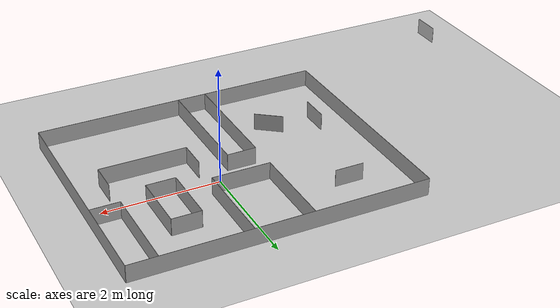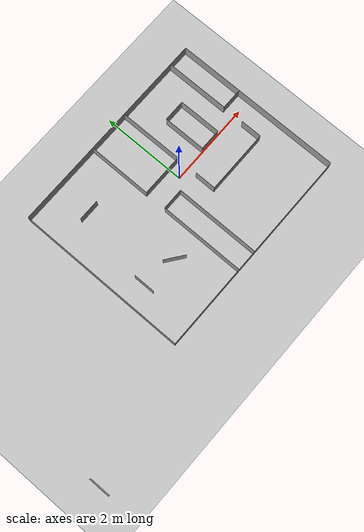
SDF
<sdf version="1.7">
 <world name="default">
  <model name="ground_plane">
   <static>1</static>
   <link name="link">
    <collision name="collision">
     <geometry><plane><normal>0 0 1</normal><size>100 100</size></plane></geometry>
     <surface>
      <contact><collide_bitmask>65535</collide_bitmask></contact>
      <friction><ode><mu>100</mu><mu2>50</mu2></ode></friction>
     </surface>
    </collision>
    <visual name="visual">
     <cast_shadows>0</cast_shadows>
     <geometry><plane><normal>0 0 1</normal><size>100 100</size></plane></geometry>
     <material>
      <script><uri>file://media/materials/scripts/gazebo.material</uri><name>Gazebo/Grey</name></script>
     </material>
    </visual>
   </link>
  </model>
  <model name="boundary_5*0.3_clone">
   <link name="link">
    <inertial>
     <mass>1</mass>
     <inertia>
      <ixx>0.166667</ixx>
      <ixy>0</ixy>
      <ixz>0</ixz>
      <iyy>0.166667</iyy>
      <iyz>0</iyz>
      <izz>0.166667</izz>
     </inertia>
    </inertial>
    <visual name="visual">
     <geometry><box><size>5 0.005 0.3</size></box></geometry>
     <material>
      <script><name>Gazebo/Grey</name><uri>file://media/materials/scripts/gazebo.material</uri></script>
      <shader type="pixel"><normal_map>__default__</normal_map></shader>
      <ambient>0.3 0.3 0.3 1</ambient>
      <diffuse>0.7 0.7 0.7 1</diffuse>
      <specular>0.01 0.01 0.01 1</specular>
      <emissive>0 0 0 1</emissive>
     </material>
    </visual>
    <collision name="collision">
     <geometry><box><size>5 0.005 0.3</size></box></geometry>
     <surface>
      <friction>
       <ode><mu>1</mu><mu2>1</mu2><fdir1>0 0 0</fdir1><slip1>0</slip1><slip2>0</slip2></ode>
       <torsional>
        <coefficient>1</coefficient>
        <patch_radius>0</patch_radius>
        <surface_radius>0</surface_radius>
        <use_patch_radius>1</use_patch_radius>
        <ode><slip>0</slip></ode>
       </torsional>
      </friction>
      <bounce><restitution_coefficient>0</restitution_coefficient><threshold>1e+06</threshold></bounce>
      <contact>
       <collide_without_contact>0</collide_without_contact>
       <collide_without_contact_bitmask>1</collide_without_contact_bitmask>
       <collide_bitmask>1</collide_bitmask>
       <ode>
        <soft_cfm>0</soft_cfm>
        <soft_erp>0.2</soft_erp>
        <kp>1e+13</kp>
        <kd>1</kd>
        <max_vel>0.01</max_vel>
        <min_depth>0</min_depth>
       </ode>
       <bullet>
        <split_impulse>1</split_impulse>
        <split_impulse_penetration_threshold>-0.01</split_impulse_penetration_threshold>
        <soft_cfm>0</soft_cfm>
        <soft_erp>0.2</soft_erp>
        <kp>1e+13</kp>
        <kd>1</kd>
       </bullet>
      </contact>
     </surface>
    </collision>
   </link>
   <static>1</static>
   <pose>-0.256653 -2.25815 0.149981 -1e-06 7e-06 0.000393</pose>
  </model>
  <model name="boundry_4*0.3">
   <link name="link">
    <inertial>
     <mass>1</mass>
     <inertia>
      <ixx>0.166667</ixx>
      <ixy>0</ixy>
      <ixz>0</ixz>
      <iyy>0.166667</iyy>
      <iyz>0</iyz>
      <izz>0.166667</izz>
     </inertia>
    </inertial>
    <visual name="visual">
     <geometry><box><size>0.005 4 0.3</size></box></geometry>
     <material>
      <script><name>Gazebo/Grey</name><uri>file://media/materials/scripts/gazebo.material</uri></script>
      <shader type="pixel"><normal_map>__default__</normal_map></shader>
      <ambient>0.3 0.3 0.3 1</ambient>
      <diffuse>0.7 0.7 0.7 1</diffuse>
      <specular>0.01 0.01 0.01 1</specular>
      <emissive>0 0 0 1</emissive>
     </material>
    </visual>
    <collision name="collision">
     <geometry><box><size>0.005 4 0.3</size></box></geometry>
     <surface>
      <friction>
       <ode><mu>1</mu><mu2>1</mu2><fdir1>0 0 0</fdir1><slip1>0</slip1><slip2>0</slip2></ode>
       <torsional>
        <coefficient>1</coefficient>
        <patch_radius>0</patch_radius>
        <surface_radius>0</surface_radius>
        <use_patch_radius>1</use_patch_radius>
        <ode><slip>0</slip></ode>
       </torsional>
      </friction>
      <bounce><restitution_coefficient>0</restitution_coefficient><threshold>1e+06</threshold></bounce>
      <contact>
       <collide_without_contact>0</collide_without_contact>
       <collide_without_contact_bitmask>1</collide_without_contact_bitmask>
       <collide_bitmask>1</collide_bitmask>
       <ode>
        <soft_cfm>0</soft_cfm>
        <soft_erp>0.2</soft_erp>
        <kp>1e+13</kp>
        <kd>1</kd>
        <max_vel>0.01</max_vel>
        <min_depth>0</min_depth>
       </ode>
       <bullet>
        <split_impulse>1</split_impulse>
        <split_impulse_penetration_threshold>-0.01</split_impulse_penetration_threshold>
        <soft_cfm>0</soft_cfm>
        <soft_erp>0.2</soft_erp>
        <kp>1e+13</kp>
        <kd>1</kd>
       </bullet>
      </contact>
     </surface>
    </collision>
   </link>
   <static>1</static>
   <pose>-2.75267 -0.251158 0.15 0 0.000101 -5.8e-05</pose>
  </model>
  <model name="boundary_5*0.3">
   <link name="link">
    <inertial>
     <mass>1</mass>
     <inertia>
      <ixx>0.166667</ixx>
      <ixy>0</ixy>
      <ixz>0</ixz>
      <iyy>0.166667</iyy>
      <iyz>0</iyz>
      <izz>0.166667</izz>
     </inertia>
    </inertial>
    <visual name="visual">
     <geometry><box><size>5 0.005 0.3</size></box></geometry>
     <material>
      <script><name>Gazebo/Grey</name><uri>file://media/materials/scripts/gazebo.material</uri></script>
      <shader type="pixel"><normal_map>__default__</normal_map></shader>
      <ambient>0.3 0.3 0.3 1</ambient>
      <diffuse>0.7 0.7 0.7 1</diffuse>
      <specular>0.01 0.01 0.01 1</specular>
      <emissive>0 0 0 1</emissive>
     </material>
    </visual>
    <collision name="collision">
     <geometry><box><size>5 0.005 0.3</size></box></geometry>
     <surface>
      <friction>
       <ode><mu>1</mu><mu2>1</mu2><fdir1>0 0 0</fdir1><slip1>0</slip1><slip2>0</slip2></ode>
       <torsional>
        <coefficient>1</coefficient>
        <patch_radius>0</patch_radius>
        <surface_radius>0</surface_radius>
        <use_patch_radius>1</use_patch_radius>
        <ode><slip>0</slip></ode>
       </torsional>
      </friction>
      <bounce><restitution_coefficient>0</restitution_coefficient><threshold>1e+06</threshold></bounce>
      <contact>
       <collide_without_contact>0</collide_without_contact>
       <collide_without_contact_bitmask>1</collide_without_contact_bitmask>
       <collide_bitmask>1</collide_bitmask>
       <ode>
        <soft_cfm>0</soft_cfm>
        <soft_erp>0.2</soft_erp>
        <kp>1e+13</kp>
        <kd>1</kd>
        <max_vel>0.01</max_vel>
        <min_depth>0</min_depth>
       </ode>
       <bullet>
        <split_impulse>1</split_impulse>
        <split_impulse_penetration_threshold>-0.01</split_impulse_penetration_threshold>
        <soft_cfm>0</soft_cfm>
        <soft_erp>0.2</soft_erp>
        <kp>1e+13</kp>
        <kd>1</kd>
       </bullet>
      </contact>
     </surface>
    </collision>
   </link>
   <static>1</static>
   <pose>-0.25 1.75297 0.149981 2e-06 -6e-06 0.000154</pose>
  </model>
  <model name="boundry_4*0.3_clone">
   <link name="link">
    <inertial>
     <mass>1</mass>
     <inertia>
      <ixx>0.166667</ixx>
      <ixy>0</ixy>
      <ixz>0</ixz>
      <iyy>0.166667</iyy>
      <iyz>0</iyz>
      <izz>0.166667</izz>
     </inertia>
    </inertial>
    <visual name="visual">
     <geometry><box><size>0.005 4 0.3</size></box></geometry>
     <material>
      <script><name>Gazebo/Grey</name><uri>file://media/materials/scripts/gazebo.material</uri></script>
      <shader type="pixel"><normal_map>__default__</normal_map></shader>
      <ambient>0.3 0.3 0.3 1</ambient>
      <diffuse>0.7 0.7 0.7 1</diffuse>
      <specular>0.01 0.01 0.01 1</specular>
      <emissive>0 0 0 1</emissive>
     </material>
    </visual>
    <collision name="collision">
     <geometry><box><size>0.005 4 0.3</size></box></geometry>
     <surface>
      <friction>
       <ode><mu>1</mu><mu2>1</mu2><fdir1>0 0 0</fdir1><slip1>0</slip1><slip2>0</slip2></ode>
       <torsional>
        <coefficient>1</coefficient>
        <patch_radius>0</patch_radius>
        <surface_radius>0</surface_radius>
        <use_patch_radius>1</use_patch_radius>
        <ode><slip>0</slip></ode>
       </torsional>
      </friction>
      <bounce><restitution_coefficient>0</restitution_coefficient><threshold>1e+06</threshold></bounce>
      <contact>
       <collide_without_contact>0</collide_without_contact>
       <collide_without_contact_bitmask>1</collide_without_contact_bitmask>
       <collide_bitmask>1</collide_bitmask>
       <ode>
        <soft_cfm>0</soft_cfm>
        <soft_erp>0.2</soft_erp>
        <kp>1e+13</kp>
        <kd>1</kd>
        <max_vel>0.01</max_vel>
        <min_depth>0</min_depth>
       </ode>
       <bullet>
        <split_impulse>1</split_impulse>
        <split_impulse_penetration_threshold>-0.01</split_impulse_penetration_threshold>
        <soft_cfm>0</soft_cfm>
        <soft_erp>0.2</soft_erp>
        <kp>1e+13</kp>
        <kd>1</kd>
       </bullet>
      </contact>
     </surface>
    </collision>
   </link>
   <static>1</static>
   <pose>2.25266 -0.249739 0.15 -0 -0.000102 1e-05</pose>
  </model>
  <model name="boundry_1.5*0.3">
   <link name="link">
    <inertial>
     <mass>1</mass>
     <inertia>
      <ixx>0.166667</ixx>
      <ixy>0</ixy>
      <ixz>0</ixz>
      <iyy>0.166667</iyy>
      <iyz>0</iyz>
      <izz>0.166667</izz>
     </inertia>
    </inertial>
    <visual name="visual">
     <geometry><box><size>0.005 1.5 0.3</size></box></geometry>
     <material>
      <script><name>Gazebo/Grey</name><uri>file://media/materials/scripts/gazebo.material</uri></script>
      <shader type="pixel"><normal_map>__default__</normal_map></shader>
      <ambient>0.3 0.3 0.3 1</ambient>
      <diffuse>0.7 0.7 0.7 1</diffuse>
      <specular>0.01 0.01 0.01 1</specular>
      <emissive>0 0 0 1</emissive>
     </material>
    </visual>
    <collision name="collision">
     <geometry><box><size>0.005 1.5 0.3</size></box></geometry>
     <surface>
      <friction>
       <ode><mu>1</mu><mu2>1</mu2><fdir1>0 0 0</fdir1><slip1>0</slip1><slip2>0</slip2></ode>
       <torsional>
        <coefficient>1</coefficient>
        <patch_radius>0</patch_radius>
        <surface_radius>0</surface_radius>
        <use_patch_radius>1</use_patch_radius>
        <ode><slip>0</slip></ode>
       </torsional>
      </friction>
      <bounce><restitution_coefficient>0</restitution_coefficient><threshold>1e+06</threshold></bounce>
      <contact>
       <collide_without_contact>0</collide_without_contact>
       <collide_without_contact_bitmask>1</collide_without_contact_bitmask>
       <collide_bitmask>1</collide_bitmask>
       <ode>
        <soft_cfm>0</soft_cfm>
        <soft_erp>0.2</soft_erp>
        <kp>1e+13</kp>
        <kd>1</kd>
        <max_vel>0.01</max_vel>
        <min_depth>0</min_depth>
       </ode>
       <bullet>
        <split_impulse>1</split_impulse>
        <split_impulse_penetration_threshold>-0.01</split_impulse_penetration_threshold>
        <soft_cfm>0</soft_cfm>
        <soft_erp>0.2</soft_erp>
        <kp>1e+13</kp>
        <kd>1</kd>
       </bullet>
      </contact>
     </surface>
    </collision>
   </link>
   <static>1</static>
   <pose>-0.751257 1 0.149993 1e-05 5e-06 -0.001735</pose>
  </model>
  <model name="boundry_1.5*0.3_clone">
   <link name="link">
    <inertial>
     <mass>1</mass>
     <inertia>
      <ixx>0.166667</ixx>
      <ixy>0</ixy>
      <ixz>0</ixz>
      <iyy>0.166667</iyy>
      <iyz>0</iyz>
      <izz>0.166667</izz>
     </inertia>
    </inertial>
    <visual name="visual">
     <geometry><box><size>0.005 1.5 0.3</size></box></geometry>
     <material>
      <script><name>Gazebo/Grey</name><uri>file://media/materials/scripts/gazebo.material</uri></script>
      <shader type="pixel"><normal_map>__default__</normal_map></shader>
      <ambient>0.3 0.3 0.3 1</ambient>
      <diffuse>0.7 0.7 0.7 1</diffuse>
      <specular>0.01 0.01 0.01 1</specular>
      <emissive>0 0 0 1</emissive>
     </material>
    </visual>
    <collision name="collision">
     <geometry><box><size>0.005 1.5 0.3</size></box></geometry>
     <surface>
      <friction>
       <ode><mu>1</mu><mu2>1</mu2><fdir1>0 0 0</fdir1><slip1>0</slip1><slip2>0</slip2></ode>
       <torsional>
        <coefficient>1</coefficient>
        <patch_radius>0</patch_radius>
        <surface_radius>0</surface_radius>
        <use_patch_radius>1</use_patch_radius>
        <ode><slip>0</slip></ode>
       </torsional>
      </friction>
      <bounce><restitution_coefficient>0</restitution_coefficient><threshold>1e+06</threshold></bounce>
      <contact>
       <collide_without_contact>0</collide_without_contact>
       <collide_without_contact_bitmask>1</collide_without_contact_bitmask>
       <collide_bitmask>1</collide_bitmask>
       <ode>
        <soft_cfm>0</soft_cfm>
        <soft_erp>0.2</soft_erp>
        <kp>1e+13</kp>
        <kd>1</kd>
        <max_vel>0.01</max_vel>
        <min_depth>0</min_depth>
       </ode>
       <bullet>
        <split_impulse>1</split_impulse>
        <split_impulse_penetration_threshold>-0.01</split_impulse_penetration_threshold>
        <soft_cfm>0</soft_cfm>
        <soft_erp>0.2</soft_erp>
        <kp>1e+13</kp>
        <kd>1</kd>
       </bullet>
      </contact>
     </surface>
    </collision>
   </link>
   <static>1</static>
   <pose>0.250874 0.999816 0.15 0 -1.5e-05 0.002246</pose>
  </model>
  <model name="boundry_1.5*0.3_clone_0">
   <link name="link">
    <inertial>
     <mass>1</mass>
     <inertia>
      <ixx>0.166667</ixx>
      <ixy>0</ixy>
      <ixz>0</ixz>
      <iyy>0.166667</iyy>
      <iyz>0</iyz>
      <izz>0.166667</izz>
     </inertia>
    </inertial>
    <visual name="visual">
     <geometry><box><size>0.005 1.5 0.3</size></box></geometry>
     <material>
      <script><name>Gazebo/Grey</name><uri>file://media/materials/scripts/gazebo.material</uri></script>
      <shader type="pixel"><normal_map>__default__</normal_map></shader>
      <ambient>0.3 0.3 0.3 1</ambient>
      <diffuse>0.7 0.7 0.7 1</diffuse>
      <specular>0.01 0.01 0.01 1</specular>
      <emissive>0 0 0 1</emissive>
     </material>
    </visual>
    <collision name="collision">
     <geometry><box><size>0.005 1.5 0.3</size></box></geometry>
     <surface>
      <friction>
       <ode><mu>1</mu><mu2>1</mu2><fdir1>0 0 0</fdir1><slip1>0</slip1><slip2>0</slip2></ode>
       <torsional>
        <coefficient>1</coefficient>
        <patch_radius>0</patch_radius>
        <surface_radius>0</surface_radius>
        <use_patch_radius>1</use_patch_radius>
        <ode><slip>0</slip></ode>
       </torsional>
      </friction>
      <bounce><restitution_coefficient>0</restitution_coefficient><threshold>1e+06</threshold></bounce>
      <contact>
       <collide_without_contact>0</collide_without_contact>
       <collide_without_contact_bitmask>1</collide_without_contact_bitmask>
       <collide_bitmask>1</collide_bitmask>
       <ode>
        <soft_cfm>0</soft_cfm>
        <soft_erp>0.2</soft_erp>
        <kp>1e+13</kp>
        <kd>1</kd>
        <max_vel>0.01</max_vel>
        <min_depth>0</min_depth>
       </ode>
       <bullet>
        <split_impulse>1</split_impulse>
        <split_impulse_penetration_threshold>-0.01</split_impulse_penetration_threshold>
        <soft_cfm>0</soft_cfm>
        <soft_erp>0.2</soft_erp>
        <kp>1e+13</kp>
        <kd>1</kd>
       </bullet>
      </contact>
     </surface>
    </collision>
   </link>
   <static>1</static>
   <pose>1.75004 1.00038 0.15 0 8e-06 -5.8e-05</pose>
  </model>
  <model name="boundry_2*0.3">
   <link name="link">
    <inertial>
     <mass>1</mass>
     <inertia>
      <ixx>0.166667</ixx>
      <ixy>0</ixy>
      <ixz>0</ixz>
      <iyy>0.166667</iyy>
      <iyz>0</iyz>
      <izz>0.166667</izz>
     </inertia>
    </inertial>
    <visual name="visual">
     <geometry><box><size>0.005 2 0.3</size></box></geometry>
     <material>
      <script><name>Gazebo/Grey</name><uri>file://media/materials/scripts/gazebo.material</uri></script>
      <shader type="pixel"><normal_map>__default__</normal_map></shader>
      <ambient>0.3 0.3 0.3 1</ambient>
      <diffuse>0.7 0.7 0.7 1</diffuse>
      <specular>0.01 0.01 0.01 1</specular>
      <emissive>0 0 0 1</emissive>
     </material>
    </visual>
    <collision name="collision">
     <geometry><box><size>0.005 2 0.3</size></box></geometry>
     <surface>
      <friction>
       <ode><mu>1</mu><mu2>1</mu2><fdir1>0 0 0</fdir1><slip1>0</slip1><slip2>0</slip2></ode>
       <torsional>
        <coefficient>1</coefficient>
        <patch_radius>0</patch_radius>
        <surface_radius>0</surface_radius>
        <use_patch_radius>1</use_patch_radius>
        <ode><slip>0</slip></ode>
       </torsional>
      </friction>
      <bounce><restitution_coefficient>0</restitution_coefficient><threshold>1e+06</threshold></bounce>
      <contact>
       <collide_without_contact>0</collide_without_contact>
       <collide_without_contact_bitmask>1</collide_without_contact_bitmask>
       <collide_bitmask>1</collide_bitmask>
       <ode>
        <soft_cfm>0</soft_cfm>
        <soft_erp>0.2</soft_erp>
        <kp>1e+13</kp>
        <kd>1</kd>
        <max_vel>0.01</max_vel>
        <min_depth>0</min_depth>
       </ode>
       <bullet>
        <split_impulse>1</split_impulse>
        <split_impulse_penetration_threshold>-0.01</split_impulse_penetration_threshold>
        <soft_cfm>0</soft_cfm>
        <soft_erp>0.2</soft_erp>
        <kp>1e+13</kp>
        <kd>1</kd>
       </bullet>
      </contact>
     </surface>
    </collision>
   </link>
   <static>1</static>
   <pose>-0.750005 -1.25517 0.149981 -1.9e-05 -1e-06 -6e-06</pose>
  </model>
  <model name="boundry_2*0.3_clone">
   <link name="link">
    <inertial>
     <mass>1</mass>
     <inertia>
      <ixx>0.166667</ixx>
      <ixy>0</ixy>
      <ixz>0</ixz>
      <iyy>0.166667</iyy>
      <iyz>0</iyz>
      <izz>0.166667</izz>
     </inertia>
    </inertial>
    <visual name="visual">
     <geometry><box><size>0.005 2 0.3</size></box></geometry>
     <material>
      <script><name>Gazebo/Grey</name><uri>file://media/materials/scripts/gazebo.material</uri></script>
      <shader type="pixel"><normal_map>__default__</normal_map></shader>
      <ambient>0.3 0.3 0.3 1</ambient>
      <diffuse>0.7 0.7 0.7 1</diffuse>
      <specular>0.01 0.01 0.01 1</specular>
      <emissive>0 0 0 1</emissive>
     </material>
    </visual>
    <collision name="collision">
     <geometry><box><size>0.005 2 0.3</size></box></geometry>
     <surface>
      <friction>
       <ode><mu>1</mu><mu2>1</mu2><fdir1>0 0 0</fdir1><slip1>0</slip1><slip2>0</slip2></ode>
       <torsional>
        <coefficient>1</coefficient>
        <patch_radius>0</patch_radius>
        <surface_radius>0</surface_radius>
        <use_patch_radius>1</use_patch_radius>
        <ode><slip>0</slip></ode>
       </torsional>
      </friction>
      <bounce><restitution_coefficient>0</restitution_coefficient><threshold>1e+06</threshold></bounce>
      <contact>
       <collide_without_contact>0</collide_without_contact>
       <collide_without_contact_bitmask>1</collide_without_contact_bitmask>
       <collide_bitmask>1</collide_bitmask>
       <ode>
        <soft_cfm>0</soft_cfm>
        <soft_erp>0.2</soft_erp>
        <kp>1e+13</kp>
        <kd>1</kd>
        <max_vel>0.01</max_vel>
        <min_depth>0</min_depth>
       </ode>
       <bullet>
        <split_impulse>1</split_impulse>
        <split_impulse_penetration_threshold>-0.01</split_impulse_penetration_threshold>
        <soft_cfm>0</soft_cfm>
        <soft_erp>0.2</soft_erp>
        <kp>1e+13</kp>
        <kd>1</kd>
       </bullet>
      </contact>
     </surface>
    </collision>
   </link>
   <static>1</static>
   <pose>-0.249943 -1.2555 0.149945 -5.5e-05 -0.000133 -0.000347</pose>
  </model>
  <model name="boundry_1.5*0.3_clone_clone">
   <link name="link">
    <inertial>
     <mass>1</mass>
     <inertia>
      <ixx>0.166667</ixx>
      <ixy>0</ixy>
      <ixz>0</ixz>
      <iyy>0.166667</iyy>
      <iyz>0</iyz>
      <izz>0.166667</izz>
     </inertia>
    </inertial>
    <visual name="visual">
     <geometry><box><size>0.005 1.5 0.3</size></box></geometry>
     <material>
      <script><name>Gazebo/Grey</name><uri>file://media/materials/scripts/gazebo.material</uri></script>
      <shader type="pixel"><normal_map>__default__</normal_map></shader>
      <ambient>0.3 0.3 0.3 1</ambient>
      <diffuse>0.7 0.7 0.7 1</diffuse>
      <specular>0.01 0.01 0.01 1</specular>
      <emissive>0 0 0 1</emissive>
     </material>
    </visual>
    <collision name="collision">
     <geometry><box><size>0.005 1.5 0.3</size></box></geometry>
     <surface>
      <friction>
       <ode><mu>1</mu><mu2>1</mu2><fdir1>0 0 0</fdir1><slip1>0</slip1><slip2>0</slip2></ode>
       <torsional>
        <coefficient>1</coefficient>
        <patch_radius>0</patch_radius>
        <surface_radius>0</surface_radius>
        <use_patch_radius>1</use_patch_radius>
        <ode><slip>0</slip></ode>
       </torsional>
      </friction>
      <bounce><restitution_coefficient>0</restitution_coefficient><threshold>1e+06</threshold></bounce>
      <contact>
       <collide_without_contact>0</collide_without_contact>
       <collide_without_contact_bitmask>1</collide_without_contact_bitmask>
       <collide_bitmask>1</collide_bitmask>
       <ode>
        <soft_cfm>0</soft_cfm>
        <soft_erp>0.2</soft_erp>
        <kp>1e+13</kp>
        <kd>1</kd>
        <max_vel>0.01</max_vel>
        <min_depth>0</min_depth>
       </ode>
       <bullet>
        <split_impulse>1</split_impulse>
        <split_impulse_penetration_threshold>-0.01</split_impulse_penetration_threshold>
        <soft_cfm>0</soft_cfm>
        <soft_erp>0.2</soft_erp>
        <kp>1e+13</kp>
        <kd>1</kd>
       </bullet>
      </contact>
     </surface>
    </collision>
   </link>
   <static>1</static>
   <pose>0.999383 -0.750677 0.149989 1.9e-05 -0.001043 1.57282</pose>
  </model>
  <model name="boundary_1*0.3">
   <link name="link">
    <inertial>
     <mass>1</mass>
     <inertia>
      <ixx>0.166667</ixx>
      <ixy>0</ixy>
      <ixz>0</ixz>
      <iyy>0.166667</iyy>
      <iyz>0</iyz>
      <izz>0.166667</izz>
     </inertia>
    </inertial>
    <visual name="visual">
     <geometry><box><size>1 0.005 0.3</size></box></geometry>
     <material>
      <script><name>Gazebo/Grey</name><uri>file://media/materials/scripts/gazebo.material</uri></script>
      <shader type="pixel"><normal_map>__default__</normal_map></shader>
      <ambient>0.3 0.3 0.3 1</ambient>
      <diffuse>0.7 0.7 0.7 1</diffuse>
      <specular>0.01 0.01 0.01 1</specular>
      <emissive>0 0 0 1</emissive>
     </material>
    </visual>
    <collision name="collision">
     <geometry><box><size>1 0.005 0.3</size></box></geometry>
     <surface>
      <friction>
       <ode><mu>1</mu><mu2>1</mu2><fdir1>0 0 0</fdir1><slip1>0</slip1><slip2>0</slip2></ode>
       <torsional>
        <coefficient>1</coefficient>
        <patch_radius>0</patch_radius>
        <surface_radius>0</surface_radius>
        <use_patch_radius>1</use_patch_radius>
        <ode><slip>0</slip></ode>
       </torsional>
      </friction>
      <bounce><restitution_coefficient>0</restitution_coefficient><threshold>1e+06</threshold></bounce>
      <contact>
       <collide_without_contact>0</collide_without_contact>
       <collide_without_contact_bitmask>1</collide_without_contact_bitmask>
       <collide_bitmask>1</collide_bitmask>
       <ode>
        <soft_cfm>0</soft_cfm>
        <soft_erp>0.2</soft_erp>
        <kp>1e+13</kp>
        <kd>1</kd>
        <max_vel>0.01</max_vel>
        <min_depth>0</min_depth>
       </ode>
       <bullet>
        <split_impulse>1</split_impulse>
        <split_impulse_penetration_threshold>-0.01</split_impulse_penetration_threshold>
        <soft_cfm>0</soft_cfm>
        <soft_erp>0.2</soft_erp>
        <kp>1e+13</kp>
        <kd>1</kd>
       </bullet>
      </contact>
     </surface>
    </collision>
   </link>
   <static>1</static>
   <pose>-0.249996 0.252503 0.15 -7e-06 -0 -0.001728</pose>
  </model>
  <model name="boundary_0.5*0.3">
   <link name="link">
    <inertial>
     <mass>1</mass>
     <inertia>
      <ixx>0.166667</ixx>
      <ixy>0</ixy>
      <ixz>0</ixz>
      <iyy>0.166667</iyy>
      <iyz>0</iyz>
      <izz>0.166667</izz>
     </inertia>
    </inertial>
    <visual name="visual">
     <geometry><box><size>0.5 0.005 0.3</size></box></geometry>
     <material>
      <script><name>Gazebo/Grey</name><uri>file://media/materials/scripts/gazebo.material</uri></script>
      <shader type="pixel"><normal_map>__default__</normal_map></shader>
      <ambient>0.3 0.3 0.3 1</ambient>
      <diffuse>0.7 0.7 0.7 1</diffuse>
      <specular>0.01 0.01 0.01 1</specular>
      <emissive>0 0 0 1</emissive>
     </material>
    </visual>
    <collision name="collision">
     <geometry><box><size>0.5 0.005 0.3</size></box></geometry>
     <surface>
      <friction>
       <ode><mu>1</mu><mu2>1</mu2><fdir1>0 0 0</fdir1><slip1>0</slip1><slip2>0</slip2></ode>
       <torsional>
        <coefficient>1</coefficient>
        <patch_radius>0</patch_radius>
        <surface_radius>0</surface_radius>
        <use_patch_radius>1</use_patch_radius>
        <ode><slip>0</slip></ode>
       </torsional>
      </friction>
      <bounce><restitution_coefficient>0</restitution_coefficient><threshold>1e+06</threshold></bounce>
      <contact>
       <collide_without_contact>0</collide_without_contact>
       <collide_without_contact_bitmask>1</collide_without_contact_bitmask>
       <collide_bitmask>1</collide_bitmask>
       <ode>
        <soft_cfm>0</soft_cfm>
        <soft_erp>0.2</soft_erp>
        <kp>1e+13</kp>
        <kd>1</kd>
        <max_vel>0.01</max_vel>
        <min_depth>0</min_depth>
       </ode>
       <bullet>
        <split_impulse>1</split_impulse>
        <split_impulse_penetration_threshold>-0.01</split_impulse_penetration_threshold>
        <soft_cfm>0</soft_cfm>
        <soft_erp>0.2</soft_erp>
        <kp>1e+13</kp>
        <kd>1</kd>
       </bullet>
      </contact>
     </surface>
    </collision>
   </link>
   <static>1</static>
   <pose>-0.500033 -0.252549 0.15 0 -0 0.000201</pose>
  </model>
  <model name="boundary_0.5*0.3_clone">
   <link name="link">
    <inertial>
     <mass>1</mass>
     <inertia>
      <ixx>0.166667</ixx>
      <ixy>0</ixy>
      <ixz>0</ixz>
      <iyy>0.166667</iyy>
      <iyz>0</iyz>
      <izz>0.166667</izz>
     </inertia>
    </inertial>
    <visual name="visual">
     <geometry><box><size>0.5 0.005 0.3</size></box></geometry>
     <material>
      <script><name>Gazebo/Grey</name><uri>file://media/materials/scripts/gazebo.material</uri></script>
      <shader type="pixel"><normal_map>__default__</normal_map></shader>
      <ambient>0.3 0.3 0.3 1</ambient>
      <diffuse>0.7 0.7 0.7 1</diffuse>
      <specular>0.01 0.01 0.01 1</specular>
      <emissive>0 0 0 1</emissive>
     </material>
    </visual>
    <collision name="collision">
     <geometry><box><size>0.5 0.005 0.3</size></box></geometry>
     <surface>
      <friction>
       <ode><mu>1</mu><mu2>1</mu2><fdir1>0 0 0</fdir1><slip1>0</slip1><slip2>0</slip2></ode>
       <torsional>
        <coefficient>1</coefficient>
        <patch_radius>0</patch_radius>
        <surface_radius>0</surface_radius>
        <use_patch_radius>1</use_patch_radius>
        <ode><slip>0</slip></ode>
       </torsional>
      </friction>
      <bounce><restitution_coefficient>0</restitution_coefficient><threshold>1e+06</threshold></bounce>
      <contact>
       <collide_without_contact>0</collide_without_contact>
       <collide_without_contact_bitmask>1</collide_without_contact_bitmask>
       <collide_bitmask>1</collide_bitmask>
       <ode>
        <soft_cfm>0</soft_cfm>
        <soft_erp>0.2</soft_erp>
        <kp>1e+13</kp>
        <kd>1</kd>
        <max_vel>0.01</max_vel>
        <min_depth>0</min_depth>
       </ode>
       <bullet>
        <split_impulse>1</split_impulse>
        <split_impulse_penetration_threshold>-0.01</split_impulse_penetration_threshold>
        <soft_cfm>0</soft_cfm>
        <soft_erp>0.2</soft_erp>
        <kp>1e+13</kp>
        <kd>1</kd>
       </bullet>
      </contact>
     </surface>
    </collision>
   </link>
   <static>1</static>
   <pose>2 0.248459 0.149998 -0 -8e-06 0.002353</pose>
  </model>
  <model name="boundary_0.5*0.3_clone_clone">
   <link name="link">
    <inertial>
     <mass>1</mass>
     <inertia>
      <ixx>0.166667</ixx>
      <ixy>0</ixy>
      <ixz>0</ixz>
      <iyy>0.166667</iyy>
      <iyz>0</iyz>
      <izz>0.166667</izz>
     </inertia>
    </inertial>
    <visual name="visual">
     <geometry><box><size>0.5 0.005 0.3</size></box></geometry>
     <material>
      <script><name>Gazebo/Grey</name><uri>file://media/materials/scripts/gazebo.material</uri></script>
      <shader type="pixel"><normal_map>__default__</normal_map></shader>
      <ambient>0.3 0.3 0.3 1</ambient>
      <diffuse>0.7 0.7 0.7 1</diffuse>
      <specular>0.01 0.01 0.01 1</specular>
      <emissive>0 0 0 1</emissive>
     </material>
    </visual>
    <collision name="collision">
     <geometry><box><size>0.5 0.005 0.3</size></box></geometry>
     <surface>
      <friction>
       <ode><mu>1</mu><mu2>1</mu2><fdir1>0 0 0</fdir1><slip1>0</slip1><slip2>0</slip2></ode>
       <torsional>
        <coefficient>1</coefficient>
        <patch_radius>0</patch_radius>
        <surface_radius>0</surface_radius>
        <use_patch_radius>1</use_patch_radius>
        <ode><slip>0</slip></ode>
       </torsional>
      </friction>
      <bounce><restitution_coefficient>0</restitution_coefficient><threshold>1e+06</threshold></bounce>
      <contact>
       <collide_without_contact>0</collide_without_contact>
       <collide_without_contact_bitmask>1</collide_without_contact_bitmask>
       <collide_bitmask>1</collide_bitmask>
       <ode>
        <soft_cfm>0</soft_cfm>
        <soft_erp>0.2</soft_erp>
        <kp>1e+13</kp>
        <kd>1</kd>
        <max_vel>0.01</max_vel>
        <min_depth>0</min_depth>
       </ode>
       <bullet>
        <split_impulse>1</split_impulse>
        <split_impulse_penetration_threshold>-0.01</split_impulse_penetration_threshold>
        <soft_cfm>0</soft_cfm>
        <soft_erp>0.2</soft_erp>
        <kp>1e+13</kp>
        <kd>1</kd>
       </bullet>
      </contact>
     </surface>
    </collision>
   </link>
   <static>1</static>
   <pose>0.999512 -0.001259 0.15 0 -0 0.001461</pose>
  </model>
  <model name="boundary_0.5*0.3_clone_clone_0">
   <link name="link">
    <inertial>
     <mass>1</mass>
     <inertia>
      <ixx>0.166667</ixx>
      <ixy>0</ixy>
      <ixz>0</ixz>
      <iyy>0.166667</iyy>
      <iyz>0</iyz>
      <izz>0.166667</izz>
     </inertia>
    </inertial>
    <visual name="visual">
     <geometry><box><size>0.5 0.005 0.3</size></box></geometry>
     <material>
      <script><name>Gazebo/Grey</name><uri>file://media/materials/scripts/gazebo.material</uri></script>
      <shader type="pixel"><normal_map>__default__</normal_map></shader>
      <ambient>0.3 0.3 0.3 1</ambient>
      <diffuse>0.7 0.7 0.7 1</diffuse>
      <specular>0.01 0.01 0.01 1</specular>
      <emissive>0 0 0 1</emissive>
     </material>
    </visual>
    <collision name="collision">
     <geometry><box><size>0.5 0.005 0.3</size></box></geometry>
     <surface>
      <friction>
       <ode><mu>1</mu><mu2>1</mu2><fdir1>0 0 0</fdir1><slip1>0</slip1><slip2>0</slip2></ode>
       <torsional>
        <coefficient>1</coefficient>
        <patch_radius>0</patch_radius>
        <surface_radius>0</surface_radius>
        <use_patch_radius>1</use_patch_radius>
        <ode><slip>0</slip></ode>
       </torsional>
      </friction>
      <bounce><restitution_coefficient>0</restitution_coefficient><threshold>1e+06</threshold></bounce>
      <contact>
       <collide_without_contact>0</collide_without_contact>
       <collide_without_contact_bitmask>1</collide_without_contact_bitmask>
       <collide_bitmask>1</collide_bitmask>
       <ode>
        <soft_cfm>0</soft_cfm>
        <soft_erp>0.2</soft_erp>
        <kp>1e+13</kp>
        <kd>1</kd>
        <max_vel>0.01</max_vel>
        <min_depth>0</min_depth>
       </ode>
       <bullet>
        <split_impulse>1</split_impulse>
        <split_impulse_penetration_threshold>-0.01</split_impulse_penetration_threshold>
        <soft_cfm>0</soft_cfm>
        <soft_erp>0.2</soft_erp>
        <kp>1e+13</kp>
        <kd>1</kd>
       </bullet>
      </contact>
     </surface>
    </collision>
   </link>
   <static>1</static>
   <pose>1.0005 1.00126 0.15 3e-06 -0 0.001415</pose>
  </model>
  <model name="boundary_1*0.3_clone">
   <link name="link">
    <inertial>
     <mass>1</mass>
     <inertia>
      <ixx>0.166667</ixx>
      <ixy>0</ixy>
      <ixz>0</ixz>
      <iyy>0.166667</iyy>
      <iyz>0</iyz>
      <izz>0.166667</izz>
     </inertia>
    </inertial>
    <visual name="visual">
     <geometry><box><size>1 0.005 0.3</size></box></geometry>
     <material>
      <script><name>Gazebo/Grey</name><uri>file://media/materials/scripts/gazebo.material</uri></script>
      <shader type="pixel"><normal_map>__default__</normal_map></shader>
      <ambient>0.3 0.3 0.3 1</ambient>
      <diffuse>0.7 0.7 0.7 1</diffuse>
      <specular>0.01 0.01 0.01 1</specular>
      <emissive>0 0 0 1</emissive>
     </material>
    </visual>
    <collision name="collision">
     <geometry><box><size>1 0.005 0.3</size></box></geometry>
     <surface>
      <friction>
       <ode><mu>1</mu><mu2>1</mu2><fdir1>0 0 0</fdir1><slip1>0</slip1><slip2>0</slip2></ode>
       <torsional>
        <coefficient>1</coefficient>
        <patch_radius>0</patch_radius>
        <surface_radius>0</surface_radius>
        <use_patch_radius>1</use_patch_radius>
        <ode><slip>0</slip></ode>
       </torsional>
      </friction>
      <bounce><restitution_coefficient>0</restitution_coefficient><threshold>1e+06</threshold></bounce>
      <contact>
       <collide_without_contact>0</collide_without_contact>
       <collide_without_contact_bitmask>1</collide_without_contact_bitmask>
       <collide_bitmask>1</collide_bitmask>
       <ode>
        <soft_cfm>0</soft_cfm>
        <soft_erp>0.2</soft_erp>
        <kp>1e+13</kp>
        <kd>1</kd>
        <max_vel>0.01</max_vel>
        <min_depth>0</min_depth>
       </ode>
       <bullet>
        <split_impulse>1</split_impulse>
        <split_impulse_penetration_threshold>-0.01</split_impulse_penetration_threshold>
        <soft_cfm>0</soft_cfm>
        <soft_erp>0.2</soft_erp>
        <kp>1e+13</kp>
        <kd>1</kd>
       </bullet>
      </contact>
     </surface>
    </collision>
   </link>
   <static>1</static>
   <pose>1.25126 0.499092 0.15 -2e-06 -0 1.57231</pose>
  </model>
  <model name="boundary_1*0.3_clone_clone">
   <link name="link">
    <inertial>
     <mass>1</mass>
     <inertia>
      <ixx>0.166667</ixx>
      <ixy>0</ixy>
      <ixz>0</ixz>
      <iyy>0.166667</iyy>
      <iyz>0</iyz>
      <izz>0.166667</izz>
     </inertia>
    </inertial>
    <visual name="visual">
     <geometry><box><size>1 0.005 0.3</size></box></geometry>
     <material>
      <script><name>Gazebo/Grey</name><uri>file://media/materials/scripts/gazebo.material</uri></script>
      <shader type="pixel"><normal_map>__default__</normal_map></shader>
      <ambient>0.3 0.3 0.3 1</ambient>
      <diffuse>0.7 0.7 0.7 1</diffuse>
      <specular>0.01 0.01 0.01 1</specular>
      <emissive>0 0 0 1</emissive>
     </material>
    </visual>
    <collision name="collision">
     <geometry><box><size>1 0.005 0.3</size></box></geometry>
     <surface>
      <friction>
       <ode><mu>1</mu><mu2>1</mu2><fdir1>0 0 0</fdir1><slip1>0</slip1><slip2>0</slip2></ode>
       <torsional>
        <coefficient>1</coefficient>
        <patch_radius>0</patch_radius>
        <surface_radius>0</surface_radius>
        <use_patch_radius>1</use_patch_radius>
        <ode><slip>0</slip></ode>
       </torsional>
      </friction>
      <bounce><restitution_coefficient>0</restitution_coefficient><threshold>1e+06</threshold></bounce>
      <contact>
       <collide_without_contact>0</collide_without_contact>
       <collide_without_contact_bitmask>1</collide_without_contact_bitmask>
       <collide_bitmask>1</collide_bitmask>
       <ode>
        <soft_cfm>0</soft_cfm>
        <soft_erp>0.2</soft_erp>
        <kp>1e+13</kp>
        <kd>1</kd>
        <max_vel>0.01</max_vel>
        <min_depth>0</min_depth>
       </ode>
       <bullet>
        <split_impulse>1</split_impulse>
        <split_impulse_penetration_threshold>-0.01</split_impulse_penetration_threshold>
        <soft_cfm>0</soft_cfm>
        <soft_erp>0.2</soft_erp>
        <kp>1e+13</kp>
        <kd>1</kd>
       </bullet>
      </contact>
     </surface>
    </collision>
   </link>
   <static>1</static>
   <pose>0.748752 0.500909 0.15 9e-06 -0 1.57232</pose>
  </model>
  <model name="boundary_0.5*0.3_clone_clone_clone">
   <link name="link">
    <inertial>
     <mass>1</mass>
     <inertia>
      <ixx>0.166667</ixx>
      <ixy>0</ixy>
      <ixz>0</ixz>
      <iyy>0.166667</iyy>
      <iyz>0</iyz>
      <izz>0.166667</izz>
     </inertia>
    </inertial>
    <visual name="visual">
     <geometry><box><size>0.5 0.005 0.3</size></box></geometry>
     <material>
      <script><name>Gazebo/Grey</name><uri>file://media/materials/scripts/gazebo.material</uri></script>
      <shader type="pixel"><normal_map>__default__</normal_map></shader>
      <ambient>0.3 0.3 0.3 1</ambient>
      <diffuse>0.7 0.7 0.7 1</diffuse>
      <specular>0.01 0.01 0.01 1</specular>
      <emissive>0 0 0 1</emissive>
     </material>
    </visual>
    <collision name="collision">
     <geometry><box><size>0.5 0.005 0.3</size></box></geometry>
     <surface>
      <friction>
       <ode><mu>1</mu><mu2>1</mu2><fdir1>0 0 0</fdir1><slip1>0</slip1><slip2>0</slip2></ode>
       <torsional>
        <coefficient>1</coefficient>
        <patch_radius>0</patch_radius>
        <surface_radius>0</surface_radius>
        <use_patch_radius>1</use_patch_radius>
        <ode><slip>0</slip></ode>
       </torsional>
      </friction>
      <bounce><restitution_coefficient>0</restitution_coefficient><threshold>1e+06</threshold></bounce>
      <contact>
       <collide_without_contact>0</collide_without_contact>
       <collide_without_contact_bitmask>1</collide_without_contact_bitmask>
       <collide_bitmask>1</collide_bitmask>
       <ode>
        <soft_cfm>0</soft_cfm>
        <soft_erp>0.2</soft_erp>
        <kp>1e+13</kp>
        <kd>1</kd>
        <max_vel>0.01</max_vel>
        <min_depth>0</min_depth>
       </ode>
       <bullet>
        <split_impulse>1</split_impulse>
        <split_impulse_penetration_threshold>-0.01</split_impulse_penetration_threshold>
        <soft_cfm>0</soft_cfm>
        <soft_erp>0.2</soft_erp>
        <kp>1e+13</kp>
        <kd>1</kd>
       </bullet>
      </contact>
     </surface>
    </collision>
   </link>
   <static>1</static>
   <pose>1.75308 -0.499624 0.150004 0.001398 -2e-06 1.57019</pose>
  </model>
  <model name="boundary_0.5*0.3_clone_clone_clone_clone">
   <link name="link">
    <inertial>
     <mass>1</mass>
     <inertia>
      <ixx>0.166667</ixx>
      <ixy>0</ixy>
      <ixz>0</ixz>
      <iyy>0.166667</iyy>
      <iyz>0</iyz>
      <izz>0.166667</izz>
     </inertia>
    </inertial>
    <visual name="visual">
     <geometry><box><size>0.5 0.005 0.3</size></box></geometry>
     <material>
      <script><name>Gazebo/Grey</name><uri>file://media/materials/scripts/gazebo.material</uri></script>
      <shader type="pixel"><normal_map>__default__</normal_map></shader>
      <ambient>0.3 0.3 0.3 1</ambient>
      <diffuse>0.7 0.7 0.7 1</diffuse>
      <specular>0.01 0.01 0.01 1</specular>
      <emissive>0 0 0 1</emissive>
     </material>
    </visual>
    <collision name="collision">
     <geometry><box><size>0.5 0.005 0.3</size></box></geometry>
     <surface>
      <friction>
       <ode><mu>1</mu><mu2>1</mu2><fdir1>0 0 0</fdir1><slip1>0</slip1><slip2>0</slip2></ode>
       <torsional>
        <coefficient>1</coefficient>
        <patch_radius>0</patch_radius>
        <surface_radius>0</surface_radius>
        <use_patch_radius>1</use_patch_radius>
        <ode><slip>0</slip></ode>
       </torsional>
      </friction>
      <bounce><restitution_coefficient>0</restitution_coefficient><threshold>1e+06</threshold></bounce>
      <contact>
       <collide_without_contact>0</collide_without_contact>
       <collide_without_contact_bitmask>1</collide_without_contact_bitmask>
       <collide_bitmask>1</collide_bitmask>
       <ode>
        <soft_cfm>0</soft_cfm>
        <soft_erp>0.2</soft_erp>
        <kp>1e+13</kp>
        <kd>1</kd>
        <max_vel>0.01</max_vel>
        <min_depth>0</min_depth>
       </ode>
       <bullet>
        <split_impulse>1</split_impulse>
        <split_impulse_penetration_threshold>-0.01</split_impulse_penetration_threshold>
        <soft_cfm>0</soft_cfm>
        <soft_erp>0.2</soft_erp>
        <kp>1e+13</kp>
        <kd>1</kd>
       </bullet>
      </contact>
     </surface>
    </collision>
   </link>
   <static>1</static>
   <pose>0.249625 -0.499054 0.15 8.1e-05 0 1.56747</pose>
  </model>
  <model name="boundary_0.5*0.3_clone_clone_clone_clone_0">
   <link name="link">
    <inertial>
     <mass>1</mass>
     <inertia>
      <ixx>0.166667</ixx>
      <ixy>0</ixy>
      <ixz>0</ixz>
      <iyy>0.166667</iyy>
      <iyz>0</iyz>
      <izz>0.166667</izz>
     </inertia>
    </inertial>
    <visual name="visual">
     <geometry><box><size>0.5 0.005 0.3</size></box></geometry>
     <material>
      <script><name>Gazebo/Grey</name><uri>file://media/materials/scripts/gazebo.material</uri></script>
      <shader type="pixel"><normal_map>__default__</normal_map></shader>
      <ambient>0.3 0.3 0.3 1</ambient>
      <diffuse>0.7 0.7 0.7 1</diffuse>
      <specular>0.01 0.01 0.01 1</specular>
      <emissive>0 0 0 1</emissive>
     </material>
    </visual>
    <collision name="collision">
     <geometry><box><size>0.5 0.005 0.3</size></box></geometry>
     <surface>
      <friction>
       <ode><mu>1</mu><mu2>1</mu2><fdir1>0 0 0</fdir1><slip1>0</slip1><slip2>0</slip2></ode>
       <torsional>
        <coefficient>1</coefficient>
        <patch_radius>0</patch_radius>
        <surface_radius>0</surface_radius>
        <use_patch_radius>1</use_patch_radius>
        <ode><slip>0</slip></ode>
       </torsional>
      </friction>
      <bounce><restitution_coefficient>0</restitution_coefficient><threshold>1e+06</threshold></bounce>
      <contact>
       <collide_without_contact>0</collide_without_contact>
       <collide_without_contact_bitmask>1</collide_without_contact_bitmask>
       <collide_bitmask>1</collide_bitmask>
       <ode>
        <soft_cfm>0</soft_cfm>
        <soft_erp>0.2</soft_erp>
        <kp>1e+13</kp>
        <kd>1</kd>
        <max_vel>0.01</max_vel>
        <min_depth>0</min_depth>
       </ode>
       <bullet>
        <split_impulse>1</split_impulse>
        <split_impulse_penetration_threshold>-0.01</split_impulse_penetration_threshold>
        <soft_cfm>0</soft_cfm>
        <soft_erp>0.2</soft_erp>
        <kp>1e+13</kp>
        <kd>1</kd>
       </bullet>
      </contact>
     </surface>
    </collision>
   </link>
   <static>1</static>
   <pose>-2.22769 -0.971898 0.15 0 -0 1.5708</pose>
  </model>
  <model name="boundary_0.5*0.3_clone_clone_clone_clone_1">
   <link name="link">
    <inertial>
     <mass>1</mass>
     <inertia>
      <ixx>0.166667</ixx>
      <ixy>0</ixy>
      <ixz>0</ixz>
      <iyy>0.166667</iyy>
      <iyz>0</iyz>
      <izz>0.166667</izz>
     </inertia>
    </inertial>
    <visual name="visual">
     <geometry><box><size>0.5 0.005 0.3</size></box></geometry>
     <material>
      <script><name>Gazebo/Grey</name><uri>file://media/materials/scripts/gazebo.material</uri></script>
      <shader type="pixel"><normal_map>__default__</normal_map></shader>
      <ambient>0.3 0.3 0.3 1</ambient>
      <diffuse>0.7 0.7 0.7 1</diffuse>
      <specular>0.01 0.01 0.01 1</specular>
      <emissive>0 0 0 1</emissive>
     </material>
    </visual>
    <collision name="collision">
     <geometry><box><size>0.5 0.005 0.3</size></box></geometry>
     <surface>
      <friction>
       <ode><mu>1</mu><mu2>1</mu2><fdir1>0 0 0</fdir1><slip1>0</slip1><slip2>0</slip2></ode>
       <torsional>
        <coefficient>1</coefficient>
        <patch_radius>0</patch_radius>
        <surface_radius>0</surface_radius>
        <use_patch_radius>1</use_patch_radius>
        <ode><slip>0</slip></ode>
       </torsional>
      </friction>
      <bounce><restitution_coefficient>0</restitution_coefficient><threshold>1e+06</threshold></bounce>
      <contact>
       <collide_without_contact>0</collide_without_contact>
       <collide_without_contact_bitmask>1</collide_without_contact_bitmask>
       <collide_bitmask>1</collide_bitmask>
       <ode>
        <soft_cfm>0</soft_cfm>
        <soft_erp>0.2</soft_erp>
        <kp>1e+13</kp>
        <kd>1</kd>
        <max_vel>0.01</max_vel>
        <min_depth>0</min_depth>
       </ode>
       <bullet>
        <split_impulse>1</split_impulse>
        <split_impulse_penetration_threshold>-0.01</split_impulse_penetration_threshold>
        <soft_cfm>0</soft_cfm>
        <soft_erp>0.2</soft_erp>
        <kp>1e+13</kp>
        <kd>1</kd>
       </bullet>
      </contact>
     </surface>
    </collision>
   </link>
   <static>1</static>
   <pose>-1.81598 0.911656 0.15 -1e-06 0 4e-05</pose>
  </model>
  <model name="boundary_0.5*0.3_clone_clone_clone_clone_2">
   <link name="link">
    <inertial>
     <mass>1</mass>
     <inertia>
      <ixx>0.166667</ixx>
      <ixy>0</ixy>
      <ixz>0</ixz>
      <iyy>0.166667</iyy>
      <iyz>0</iyz>
      <izz>0.166667</izz>
     </inertia>
    </inertial>
    <visual name="visual">
     <geometry><box><size>0.5 0.005 0.3</size></box></geometry>
     <material>
      <script><name>Gazebo/Grey</name><uri>file://media/materials/scripts/gazebo.material</uri></script>
      <shader type="pixel"><normal_map>__default__</normal_map></shader>
      <ambient>0.3 0.3 0.3 1</ambient>
      <diffuse>0.7 0.7 0.7 1</diffuse>
      <specular>0.01 0.01 0.01 1</specular>
      <emissive>0 0 0 1</emissive>
     </material>
    </visual>
    <collision name="collision">
     <geometry><box><size>0.5 0.005 0.3</size></box></geometry>
     <surface>
      <friction>
       <ode><mu>1</mu><mu2>1</mu2><fdir1>0 0 0</fdir1><slip1>0</slip1><slip2>0</slip2></ode>
       <torsional>
        <coefficient>1</coefficient>
        <patch_radius>0</patch_radius>
        <surface_radius>0</surface_radius>
        <use_patch_radius>1</use_patch_radius>
        <ode><slip>0</slip></ode>
       </torsional>
      </friction>
      <bounce><restitution_coefficient>0</restitution_coefficient><threshold>1e+06</threshold></bounce>
      <contact>
       <collide_without_contact>0</collide_without_contact>
       <collide_without_contact_bitmask>1</collide_without_contact_bitmask>
       <collide_bitmask>1</collide_bitmask>
       <ode>
        <soft_cfm>0</soft_cfm>
        <soft_erp>0.2</soft_erp>
        <kp>1e+13</kp>
        <kd>1</kd>
        <max_vel>0.01</max_vel>
        <min_depth>0</min_depth>
       </ode>
       <bullet>
        <split_impulse>1</split_impulse>
        <split_impulse_penetration_threshold>-0.01</split_impulse_penetration_threshold>
        <soft_cfm>0</soft_cfm>
        <soft_erp>0.2</soft_erp>
        <kp>1e+13</kp>
        <kd>1</kd>
       </bullet>
      </contact>
     </surface>
    </collision>
   </link>
   <static>1</static>
   <pose>-1.41356 -1.09595 0.149994 -1e-06 -6e-06 -0.644102</pose>
  </model>
  <model name="fangdanyi_3">
   <link name="link_0">
    <inertial>
     <mass>1</mass>
     <inertia>
      <ixx>0.166667</ixx>
      <ixy>0</ixy>
      <ixz>0</ixz>
      <iyy>0.166667</iyy>
      <iyz>0</iyz>
      <izz>0.166667</izz>
     </inertia>
    </inertial>
    <visual name="visual">
     <geometry><box><size>0.005 0.5 0.3</size></box></geometry>
     <material>
      <lighting>1</lighting>
      <script><uri>file://media/materials/scripts/gazebo.material</uri><name>Gazebo/fangdanyi_3</name></script>
      <shader type="pixel"><normal_map>__default__</normal_map></shader>
      <ambient>0.3 0.3 0.3 1</ambient>
      <diffuse>0.7 0.7 0.7 1</diffuse>
      <specular>0.01 0.01 0.01 1</specular>
      <emissive>0 0 0 1</emissive>
     </material>
    </visual>
    <collision name="collision">
     <geometry><box><size>0.005 0.5 0.3</size></box></geometry>
     <surface>
      <friction>
       <ode><mu>1</mu><mu2>1</mu2><fdir1>0 0 0</fdir1><slip1>0</slip1><slip2>0</slip2></ode>
       <torsional>
        <coefficient>1</coefficient>
        <patch_radius>0</patch_radius>
        <surface_radius>0</surface_radius>
        <use_patch_radius>1</use_patch_radius>
        <ode><slip>0</slip></ode>
       </torsional>
      </friction>
      <bounce><restitution_coefficient>0</restitution_coefficient><threshold>1e+06</threshold></bounce>
      <contact>
       <collide_without_contact>0</collide_without_contact>
       <collide_without_contact_bitmask>1</collide_without_contact_bitmask>
       <collide_bitmask>1</collide_bitmask>
       <ode>
        <soft_cfm>0</soft_cfm>
        <soft_erp>0.2</soft_erp>
        <kp>1e+13</kp>
        <kd>1</kd>
        <max_vel>0.01</max_vel>
        <min_depth>0</min_depth>
       </ode>
       <bullet>
        <split_impulse>1</split_impulse>
        <split_impulse_penetration_threshold>-0.01</split_impulse_penetration_threshold>
        <soft_cfm>0</soft_cfm>
        <soft_erp>0.2</soft_erp>
        <kp>1e+13</kp>
        <kd>1</kd>
       </bullet>
      </contact>
     </surface>
    </collision>
   </link>
   <static>0</static>
   <pose>-5.8245 -2.96433 0.149997 1.1e-05 -0 -6.8e-05</pose>
  </model>
 </world>
</sdf>
